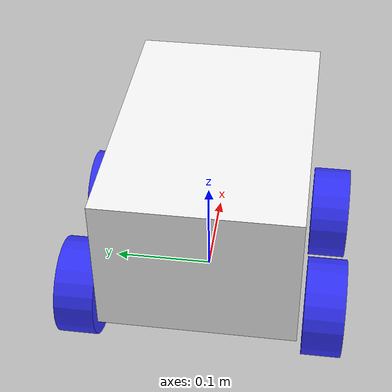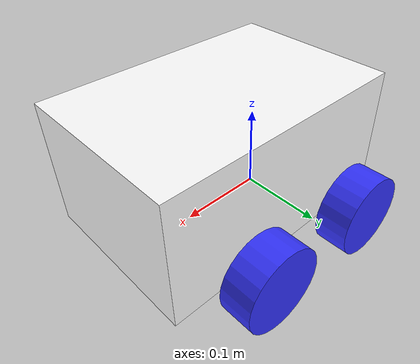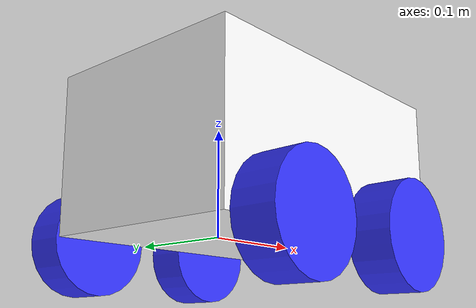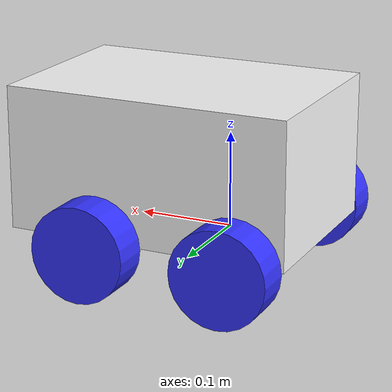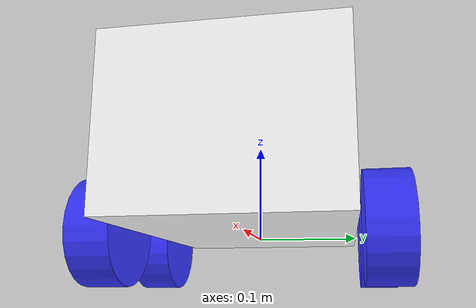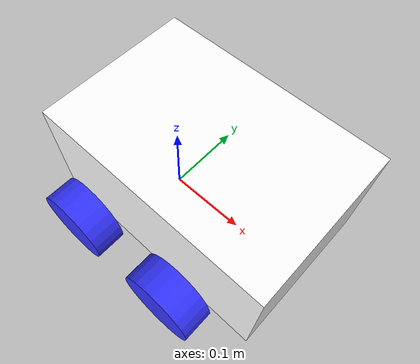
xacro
<?xml version="1.0"?>
<robot xmlns:xacro="http://www.ros.org/wiki/xacro" >

    <xacro:include filename="inertial_macros.xacro"/>

    <material name="white">
        <color rgba="1 1 1 1" />
    </material>

    <material name="orange">
        <color rgba="1 0.3 0.1 1"/>
    </material>

    <material name="blue">
        <color rgba="0.2 0.2 1 1"/>
    </material>

    <material name="black">
        <color rgba="0 0 0 1"/>
    </material>

    <material name="red">
        <color rgba="1 0 0 1"/>
    </material>

    <!-- BASE LINK -->

    <link name="base_link">

    </link>

    <joint name="base_footprint_joint" type="fixed">
        <parent link="base_link"/>
        <child link="base_footprint"/>
        <origin xyz="0 0 0" rpy="0 0 0"/>
    </joint>

    <link name="base_footprint">
    </link>

    <!-- CHASSIS LINK -->

    <joint name="chassis_joint" type="fixed">
        <parent link="base_link"/>
        <child link="chassis"/>
        <origin xyz="-0.1 0 0"/>
    </joint>

    <link name="chassis">
        <visual>
            <origin xyz="0.15 0 0.075"/>
            <geometry>
                <box size="0.3 0.2 0.15"/>
            </geometry>
            <material name="white"/>
        </visual>
        <collision>
            <origin xyz="0.15 0 0.075"/>
            <geometry>
                <box size="0.3 0.2 0.15"/>
            </geometry>
        </collision>
        <xacro:inertial_box mass="0.5" x="0.3" y="0.2" z="0.15">
            <origin xyz="0.15 0 0.075" rpy="0 0 0"/>
        </xacro:inertial_box>
    </link>

    <!-- LEFT WHEEL LINK -->

    <!-- RIGHT WHEEL LINK -->

    <!-- FRONT LEFT WHEEL LINK -->
	<joint name="front_left_wheel_joint" type="continuous">
    	<parent link="base_link" />
    	<child link="front_left_wheel" />
    	<origin xyz="0.1 0.125 0" rpy="${pi/2} 0 0" />
        <axis xyz="0 0 -1"/>
  	</joint>

	<link name="front_left_wheel">
    	<visual>
            <geometry>
                <cylinder radius="0.05" length="0.04"/>
            </geometry>
            <material name="blue"/>
        </visual>
        <collision>
            <geometry>
                <cylinder radius="0.05" length="0.04"/>
            </geometry>
        </collision>
        <xacro:inertial_cylinder mass="0.1" length="0.04" radius="0.05">
            <origin xyz="0 0 0" rpy="0 0 0"/>
        </xacro:inertial_cylinder>
  	</link>

    <!-- REAR LEFT WHEEL LINK -->
	<joint name="rear_left_wheel_joint" type="continuous">
    	<parent link="base_link" />
    	<child link="rear_left_wheel" />
    	<origin xyz="-0.05 0.125 0" rpy="${pi/2} 0 0" />
        <axis xyz="0 0 -1"/>
  	</joint>

	<link name="rear_left_wheel">
    	<visual>
            <geometry>
                <cylinder radius="0.05" length="0.04"/>
            </geometry>
            <material name="blue"/>
        </visual>
        <collision>
            <geometry>
                <cylinder radius="0.05" length="0.04"/>
            </geometry>
        </collision>
        <xacro:inertial_cylinder mass="0.1" length="0.04" radius="0.05">
            <origin xyz="0 0 0" rpy="0 0 0"/>
        </xacro:inertial_cylinder>
  	</link>

    <!-- FRONT RIGHT WHEEL LINK -->
	<joint name="front_right_wheel_joint" type="continuous">
    	<parent link="base_link" />
    	<child link="front_right_wheel" />
    	<origin xyz="0.1 -0.125 0" rpy="${pi/2} 0 0" />
        <axis xyz="0 0 -1"/>
  	</joint>

	<link name="front_right_wheel">
    	<visual>
            <geometry>
                <cylinder radius="0.05" length="0.04"/>
            </geometry>
            <material name="blue"/>
        </visual>
        <collision>
            <geometry>
                <cylinder radius="0.05" length="0.04"/>
            </geometry>
        </collision>
        <xacro:inertial_cylinder mass="0.1" length="0.04" radius="0.05">
            <origin xyz="0 0 0" rpy="0 0 0"/>
        </xacro:inertial_cylinder>
  	</link>

    <!-- REAR RIGHT WHEEL2 LINK -->
	<joint name="rear_right_wheel_joint" type="continuous">
    	<parent link="base_link" />
    	<child link="rear_right_wheel" />
    	<origin xyz="-0.05 -0.125 0" rpy="${pi/2} 0 0" />
        <axis xyz="0 0 -1"/>
  	</joint>

	<link name="rear_right_wheel">
    	<visual>
            <geometry>
                <cylinder radius="0.05" length="0.04"/>
            </geometry>
            <material name="blue"/>
        </visual>
        <collision>
            <geometry>
                <cylinder radius="0.05" length="0.04"/>
            </geometry>
        </collision>
        <xacro:inertial_cylinder mass="0.1" length="0.04" radius="0.05">
            <origin xyz="0 0 0" rpy="0 0 0"/>
        </xacro:inertial_cylinder>
  	</link>

    <!-- CASTER WHEEL LINK -->

</robot>
